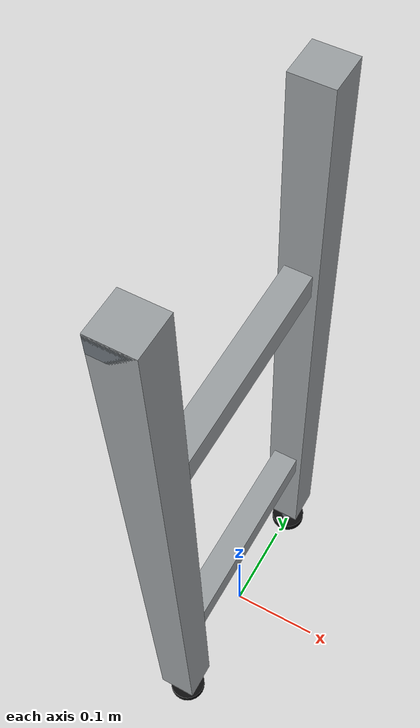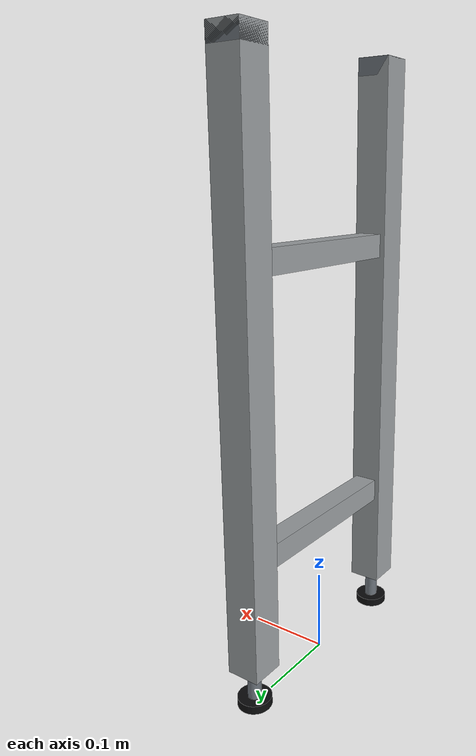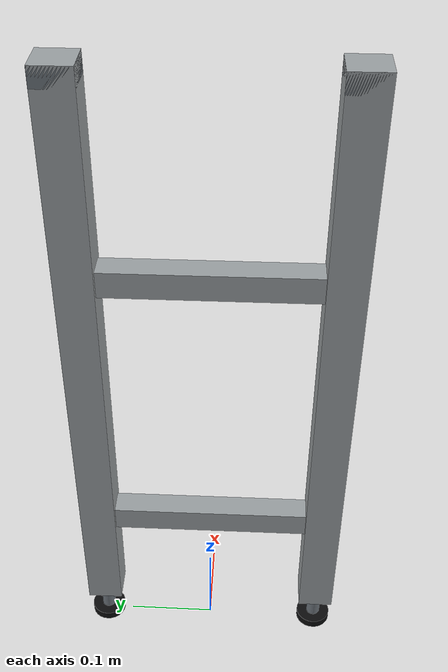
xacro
<?xml version="1.0"?>
<!-- CC0. 34CSH concept; total support height H-34. No unsupported stand spacing rule. -->
<robot xmlns:xacro="http://www.ros.org/wiki/xacro" name="belgotch-34csh-stand">
  <xacro:include filename="../../equipment-common/visual/primitives.xacro"/>
  <xacro:arg name="height" default="0.75"/><xacro:arg name="width" default="0.30"/>
  <xacro:arg name="leg" default="0.04"/>
  <xacro:property name="h" value="${$(arg height)-0.034}"/>
  <xacro:property name="w" value="$(arg width)"/><xacro:property name="a" value="$(arg leg)"/>
  <material name="steel"><color rgba="0.61 0.63 0.64 1"/></material>
  <material name="zinc"><color rgba="0.43 0.46 0.49 1"/></material>
  <material name="rubber"><color rgba="0.045 0.047 0.05 1"/></material>
  <link name="root"/>
  <xacro:macro name="leg_pair" params="s suffix">
    <xacro:box name="leg_${suffix}" size="${a} ${a} ${h-0.045}" xyz="0 ${s*(w/2-a/2)} ${(h+0.045)/2}" mat="steel"/>
    <xacro:cylinder name="level_screw_${suffix}" radius="0.008" length="0.045" xyz="0 ${s*(w/2-a/2)} 0.0325" rpy="0 0 0" mat="zinc"/>
    <xacro:cylinder name="foot_${suffix}" radius="${a/2}" length="0.01" xyz="0 ${s*(w/2-a/2)} 0.005" rpy="0 0 0" mat="rubber"/>
    <xacro:box name="top_bracket_${suffix}" size="${a} ${a} 0.02" xyz="0 ${s*(w/2-a/2)} ${h-0.01}" mat="zinc"/>
  </xacro:macro>
  <xacro:leg_pair s="-1" suffix="left"/><xacro:leg_pair s="1" suffix="right"/>
  <xacro:box name="crossbar_lower" size="0.028 ${w-a} 0.028" xyz="0 0 ${h*0.25}" mat="steel"/>
  <xacro:if value="${h &gt;= 0.50}">
    <xacro:box name="crossbar_upper" size="0.028 ${w-a} 0.028" xyz="0 0 ${h*0.70}" mat="steel"/>
  </xacro:if>
</robot>

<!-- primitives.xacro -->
<!-- CC0. Visual-only primitives, each with a stable removable resident name. -->
<robot xmlns:xacro="http://www.ros.org/wiki/xacro">
  <xacro:macro name="box" params="name size xyz mat">
    <link name="${name}"><visual><origin xyz="${xyz}"/>
      <geometry><box size="${size}"/></geometry><material name="${mat}"/>
    </visual></link>
    <joint name="j_${name}" type="fixed"><parent link="root"/><child link="${name}"/></joint>
  </xacro:macro>
  <xacro:macro name="cylinder" params="name radius length xyz rpy mat">
    <link name="${name}"><visual><origin xyz="${xyz}" rpy="${rpy}"/>
      <geometry><cylinder radius="${radius}" length="${length}"/></geometry><material name="${mat}"/>
    </visual></link>
    <joint name="j_${name}" type="fixed"><parent link="root"/><child link="${name}"/></joint>
  </xacro:macro>
  <xacro:macro name="mesh" params="name file xyz mat">
    <link name="${name}"><visual><origin xyz="${xyz}"/>
      <geometry><mesh filename="${file}"/></geometry><material name="${mat}"/>
    </visual></link>
    <joint name="j_${name}" type="fixed"><parent link="root"/><child link="${name}"/></joint>
  </xacro:macro>
</robot>
